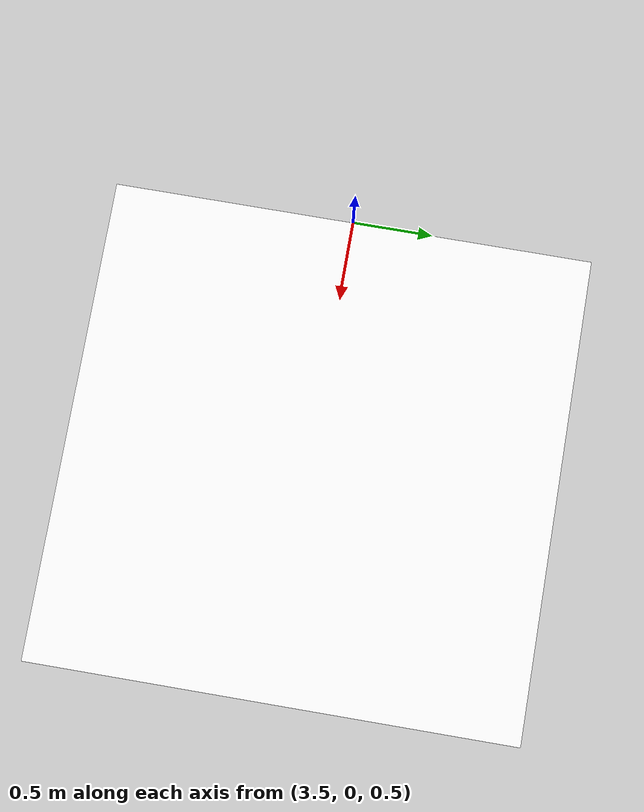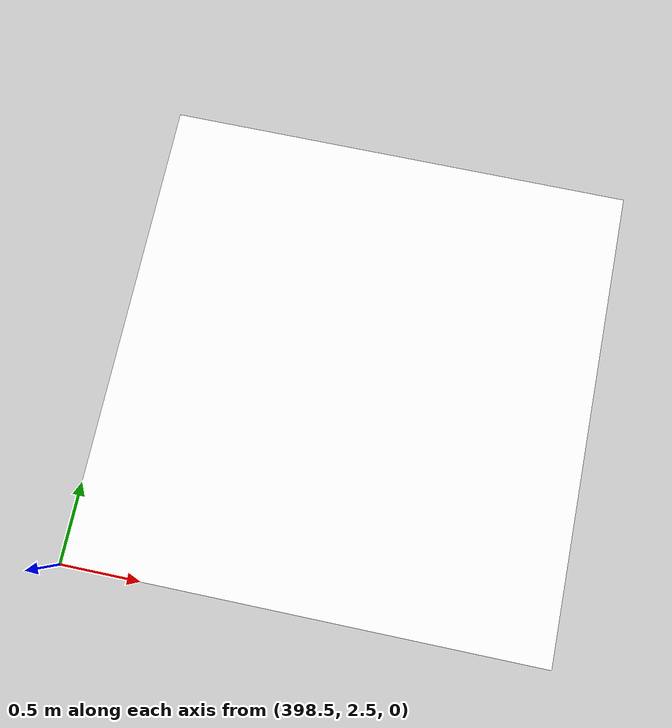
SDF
<?xml version="1.0" ?>
<sdf version="1.9">
  <world name="custom_aruco">
  <physics type="ode">
      <max_step_size>0.004</max_step_size>
      <real_time_factor>0.2</real_time_factor>
      <real_time_update_rate>50</real_time_update_rate>
    </physics>
    <plugin name="gz::sim::systems::Physics" filename="gz-sim-physics-system"/>
    <plugin name="gz::sim::systems::UserCommands" filename="gz-sim-user-commands-system"/>
    <plugin name="gz::sim::systems::SceneBroadcaster" filename="gz-sim-scene-broadcaster-system"/>
    <plugin name="gz::sim::systems::Contact" filename="gz-sim-contact-system"/>
    <plugin name="gz::sim::systems::Imu" filename="gz-sim-imu-system"/>
    <plugin name="gz::sim::systems::AirPressure" filename="gz-sim-air-pressure-system"/>
    <plugin name="gz::sim::systems::ApplyLinkWrench" filename="gz-sim-apply-link-wrench-system"/>
    <plugin name="gz::sim::systems::NavSat" filename="gz-sim-navsat-system"/>
    <plugin name="gz::sim::systems::Sensors" filename="gz-sim-sensors-system">
      <render_engine>ogre2</render_engine>
    </plugin>
    <plugin filename="libMovingArucoPlugin.so" name="gazebo::MovingArucoPlugin">
    </plugin>
    <gravity>0 0 -9.8</gravity>
    <magnetic_field>6e-06 2.3e-05 -4.2e-05</magnetic_field>
    <atmosphere type="adiabatic"/>
    <scene>
      <grid>false</grid>
      <ambient>0.4 0.4 0.4 1</ambient>
      <background>0.7 0.7 0.7 1</background>
      <shadows>true</shadows>
    </scene>
    <model name="ground_plane">
      <static>true</static>
      <link name="link">
        <collision name="collision">
          <geometry>
            <plane>
              <normal>0 0 1</normal>
              <size>1 1</size>
            </plane>
          </geometry>
          <surface>
            <friction>
              <ode/>
            </friction>
            <bounce/>
            <contact/>
          </surface>
        </collision>
        <visual name="visual">
          <geometry>
            <plane>
              <normal>0 0 1</normal>
              <size>100 100</size>
            </plane>
          </geometry>
          <material>
            <ambient>0.8 0.8 0.8 1</ambient>
            <diffuse>0.8 0.8 0.8 1</diffuse>
            <specular>0.8 0.8 0.8 1</specular>
          </material>
        </visual>
        <pose>0 0 0 0 -0 0</pose>
        <inertial>
          <pose>0 0 0 0 -0 0</pose>
          <mass>1</mass>
          <inertia>
            <ixx>1</ixx>
            <ixy>0</ixy>
            <ixz>0</ixz>
            <iyy>1</iyy>
            <iyz>0</iyz>
            <izz>1</izz>
          </inertia>
        </inertial>
        <enable_wind>false</enable_wind>
      </link>
      <pose>0 0 0 0 -0 0</pose>
      <self_collide>false</self_collide>
    </model>
    <light name="sunUTC" type="directional">
      <pose>0 0 500 0 -0 0</pose>
      <cast_shadows>true</cast_shadows>
      <intensity>1</intensity>
      <direction>0.001 0.625 -0.78</direction>
      <diffuse>0.904 0.904 0.904 1</diffuse>
      <specular>0.271 0.271 0.271 1</specular>
      <attenuation>
        <range>2000</range>
        <linear>0</linear>
        <constant>1</constant>
        <quadratic>0</quadratic>
      </attenuation>
      <spot>
        <inner_angle>0</inner_angle>
        <outer_angle>0</outer_angle>
        <falloff>0</falloff>
      </spot>
    </light>
    <spherical_coordinates>
      <surface_model>EARTH_WGS84</surface_model>
      <world_frame_orientation>ENU</world_frame_orientation>
      <latitude_deg>47.397971057728974</latitude_deg>
      <longitude_deg> 8.546163739800146</longitude_deg>
      <elevation>0</elevation>
    </spherical_coordinates>
  <include>
    <uri>model://aruco_marker</uri>
    <name>aruco_marker_1</name>
    <pose>5 0 0.5 0 0 0</pose>
    <static>false</static>
    <allow_auto_disable>false</allow_auto_disable>
  </include>

    <include>
      <uri>model://aruco_marker</uri>
      <name>aruco_marker_2</name>
      <pose>400 4 0.001 0 0 0</pose>
    </include>
  </world>
</sdf>

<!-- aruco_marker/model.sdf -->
<sdf version='1.9'>
  <model name='aruco_marker'>
    <static>false</static>
    <allow_auto_disable>false</allow_auto_disable>
    <link name='base'>
      <inertial>
        <pose>0 0 0 0 0 0</pose>
        <mass>1.0</mass>
      </inertial>
      <kinematic>true</kinematic>
      <gravity>0</gravity>
      <collision name='base_collision'>
        <pose>0 0 0 0 0 0</pose>
        <geometry>
          <box>
            <size>3 3 0.01</size>
          </box>
        </geometry>
      </collision>
      <visual name='base_visual'>
        <pose>0 0 0 0 0 0</pose>
        <geometry>
          <plane>
            <normal>0 0 1</normal>
            <size>3 3</size>
          </plane>
        </geometry>
        <material>
          <diffuse>1 1 1 1</diffuse>
          <specular>0.4 0.4 0.4 1</specular>
          <pbr>
            <metal>
              <albedo_map>model://aruco_marker/materials/aruco_marker_0.png</albedo_map>
            </metal>
          </pbr>
        </material>
      </visual>
    </link>
    <self_collide>false</self_collide>
    <enable_wind>false</enable_wind>
  </model>
</sdf>
